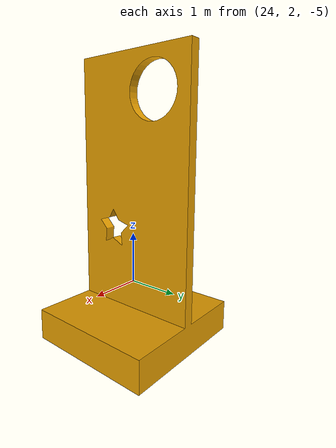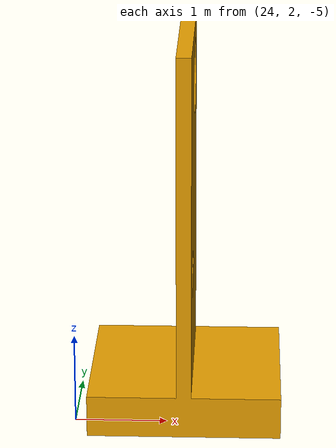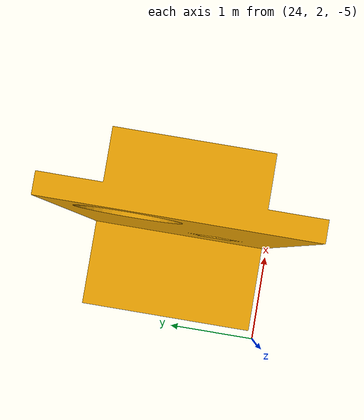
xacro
<?xml version="1.0"?>
<robot name="torpedos_2" xmlns:xacro="http://www.ros.org/wiki/xacro">

<!-- Introducir meshes -->
<xacro:property name="visual_mesh_file" value="file://$(find props_gazebo)/meshes/gman.dae" />

<link name="torpedos2_base">
    <visual>
        <origin xyz="25.180420 3.082322 -5.0" rpy="0.0 0.0 1.57"/>
        <geometry>
            <mesh filename="${visual_mesh_file}" scale="1 1 1" />
        </geometry>
    </visual>

        <!-- Se deben cambiar los parametros reales-->
    <collision>
      <origin xyz="25.180420 3.082322 -4.0" rpy="0.0 0.0 1.57"/>
      <geometry>
        <mesh filename="${visual_mesh_file}" scale="1 1 1" />
      </geometry>
    </collision>

    <inertial>
      <origin xyz="25.180420 3.082322 -4.0" rpy="0.0 0.0 1.57"/>
      <mass value="1"/>
      <inertia
        ixx="1.0" ixy="0.0" ixz="0.0"
        iyy="1.0" iyz="0.0"
        izz="1.0"/>
    </inertial>
</link>
<gazebo reference="torpedos2_base">
  <selfCollide>0</selfCollide>
  <turnGravityOff>1</turnGravityOff>
</gazebo>

</robot>
